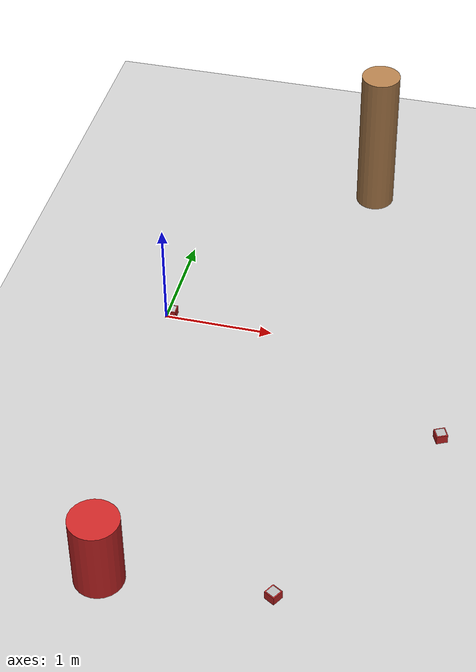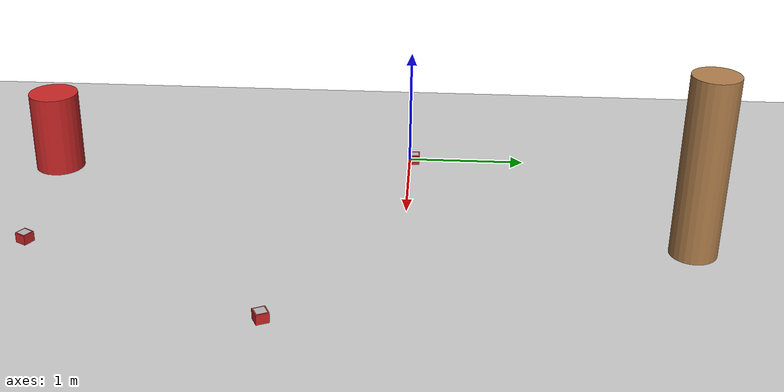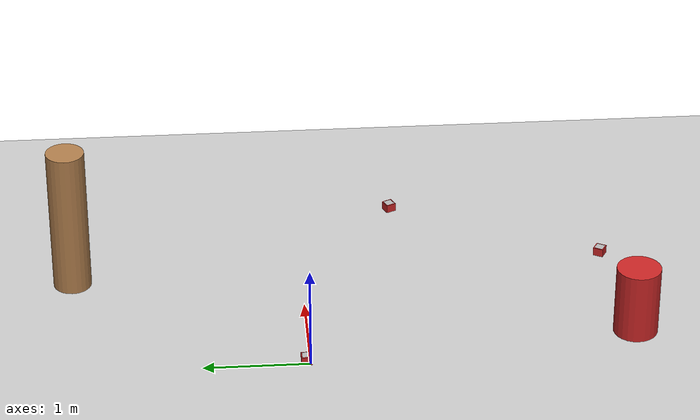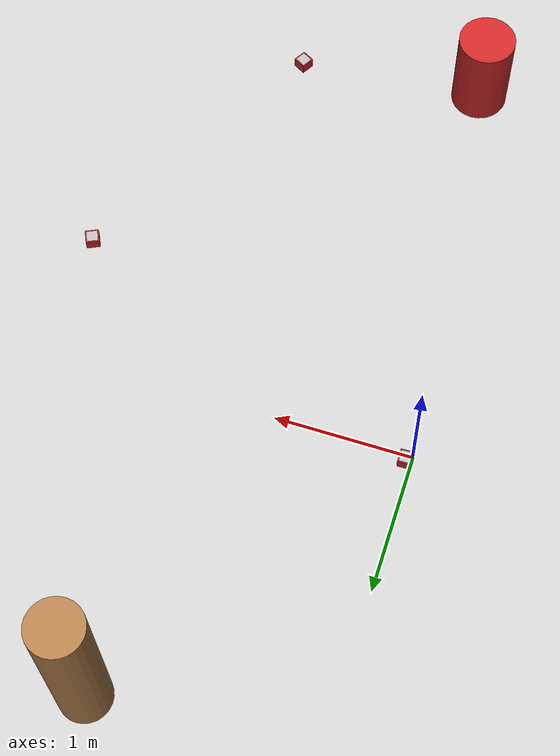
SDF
<sdf version="1.7">
 <world name="default">
  <model name="ground_plane">
   <static>1</static>
   <link name="link">
    <collision name="collision">
     <geometry><plane><normal>0 0 1</normal><size>100 100</size></plane></geometry>
     <surface><friction><ode><mu>100</mu><mu2>50</mu2></ode></friction></surface>
    </collision>
    <visual name="visual">
     <cast_shadows>0</cast_shadows>
     <geometry><plane><normal>0 0 1</normal><size>100 100</size></plane></geometry>
     <material>
      <script><uri>file://media/materials/scripts/gazebo.material</uri><name>Gazebo/Grey</name></script>
     </material>
    </visual>
   </link>
  </model>
  <model name="construction_cone_4">
   <pose>1.54493 2.21479 0.728544 0 -0 8e-06</pose>
   <link name="link">
    <inertial>
     <mass>1</mass>
     <inertia><ixx>0.145833</ixx><ixy>0</ixy><ixz>0</ixz><iyy>0.145833</iyy><iyz>0</iyz><izz>0.125</izz></inertia>
    </inertial>
    <collision name="collision">
     <geometry><cylinder><radius>0.183096</radius><length>1.4571</length></cylinder></geometry>
    </collision>
    <visual name="visual">
     <geometry><cylinder><radius>0.183096</radius><length>1.4571</length></cylinder></geometry>
     <material>
      <script><name>Gazebo/Wood</name><uri>file://media/materials/scripts/gazebo.material</uri></script>
     </material>
    </visual>
   </link>
  </model>
  <model name="poly_7">
   <pose>0.041481 0.035904 0.024995 0 0.000184 0.015537</pose>
   <link name="poly_7_link">
    <inertial>
     <mass>0.7</mass>
     <inertia>
      <ixx>0.00016667</ixx>
      <ixy>0</ixy>
      <ixz>0</ixz>
      <iyy>0.00016667</iyy>
      <iyz>0</iyz>
      <izz>0.00016667</izz>
     </inertia>
    </inertial>
    <collision name="collision"><geometry><box><size>0.1 0.1 0.1</size></box></geometry></collision>
    <visual name="visual">
     <geometry><box><size>0.1 0.1 0.1</size></box></geometry>
     <material>
      <script><name>Gazebo/Red</name><uri>file://media/materials/scripts/gazebo.material</uri></script>
     </material>
    </visual>
   </link>
   <link name="tag7">
    <pose>0 0 0.051 0 -0 0</pose>
    <collision name="collision"><geometry><box><size>0.0825 0.0825 0.0001</size></box></geometry></collision>
    <visual name="visual">
     <cast_shadows>0</cast_shadows>
     <geometry><box><size>0.0825 0.0825 0.0001</size></box></geometry>
     <material>
      <script>
       <uri>model://artag/materials/scripts</uri>
       <uri>model://artag/materials/textures</uri>
       <name>material/artag7</name>
      </script>
     </material>
    </visual>
    <inertial>
     <inertia><ixx>0.0001</ixx><ixy>0</ixy><ixz>0</ixz><iyy>0.0001</iyy><iyz>0</iyz><izz>0.0001</izz></inertia>
     <mass>0.1</mass>
    </inertial>
   </link>
   <joint name="poly_7_tag7" type="fixed"><parent>poly_7_link</parent><child>tag7</child></joint>
  </model>
  <model name="place_table_r">
   <static>1</static>
   <pose>0.343307 -3.08766 0.345 0 -0 0</pose>
   <link name="link">
    <inertial>
     <mass>1</mass>
     <inertia><ixx>0.145833</ixx><ixy>0</ixy><ixz>0</ixz><iyy>0.145833</iyy><iyz>0</iyz><izz>0.125</izz></inertia>
    </inertial>
    <collision name="collision">
     <geometry><cylinder><radius>0.21</radius><length>0.69</length></cylinder></geometry>
    </collision>
    <visual name="visual">
     <geometry><cylinder><radius>0.21</radius><length>0.69</length></cylinder></geometry>
     <material>
      <script><name>Gazebo/Red</name><uri>file://media/materials/scripts/gazebo.material</uri></script>
     </material>
    </visual>
   </link>
  </model>
  <model name="poly_8">
   <pose>1.72313 -2.95941 0.024997 5e-06 -0.000102 -2.09515</pose>
   <link name="poly_8_link">
    <inertial>
     <mass>0.7</mass>
     <inertia>
      <ixx>0.00016667</ixx>
      <ixy>0</ixy>
      <ixz>0</ixz>
      <iyy>0.00016667</iyy>
      <iyz>0</iyz>
      <izz>0.00016667</izz>
     </inertia>
    </inertial>
    <collision name="collision"><geometry><box><size>0.1 0.1 0.1</size></box></geometry></collision>
    <visual name="visual">
     <geometry><box><size>0.1 0.1 0.1</size></box></geometry>
     <material>
      <script><name>Gazebo/Red</name><uri>file://media/materials/scripts/gazebo.material</uri></script>
     </material>
    </visual>
   </link>
   <link name="tag8">
    <pose>0 0 0.051 0 -0 0</pose>
    <collision name="collision"><geometry><box><size>0.0825 0.0825 0.0001</size></box></geometry></collision>
    <visual name="visual">
     <cast_shadows>0</cast_shadows>
     <geometry><box><size>0.0825 0.0825 0.0001</size></box></geometry>
     <material>
      <script>
       <uri>model://artag/materials/scripts</uri>
       <uri>model://artag/materials/textures</uri>
       <name>material/artag8</name>
      </script>
     </material>
    </visual>
    <inertial>
     <inertia><ixx>0.0001</ixx><ixy>0</ixy><ixz>0</ixz><iyy>0.0001</iyy><iyz>0</iyz><izz>0.0001</izz></inertia>
     <mass>0.1</mass>
    </inertial>
   </link>
   <joint name="poly_8_tag8" type="fixed"><parent>poly_8_link</parent><child>tag8</child></joint>
  </model>
  <model name="poly_12">
   <pose>2.71697 -0.958161 0.025 6e-06 -0 -1.12694</pose>
   <link name="poly_12_link">
    <inertial>
     <mass>0.7</mass>
     <inertia>
      <ixx>0.00016667</ixx>
      <ixy>0</ixy>
      <ixz>0</ixz>
      <iyy>0.00016667</iyy>
      <iyz>0</iyz>
      <izz>0.00016667</izz>
     </inertia>
    </inertial>
    <collision name="collision"><geometry><box><size>0.1 0.1 0.1</size></box></geometry></collision>
    <visual name="visual">
     <geometry><box><size>0.1 0.1 0.1</size></box></geometry>
     <material>
      <script><name>Gazebo/Red</name><uri>file://media/materials/scripts/gazebo.material</uri></script>
     </material>
    </visual>
   </link>
   <link name="tag12">
    <pose>0 0 0.051 0 -0 0</pose>
    <collision name="collision"><geometry><box><size>0.0825 0.0825 0.0001</size></box></geometry></collision>
    <visual name="visual">
     <cast_shadows>0</cast_shadows>
     <geometry><box><size>0.0825 0.0825 0.0001</size></box></geometry>
     <material>
      <script>
       <uri>model://artag/materials/scripts</uri>
       <uri>model://artag/materials/textures</uri>
       <name>material/artag12</name>
      </script>
     </material>
    </visual>
    <inertial>
     <inertia><ixx>0.0001</ixx><ixy>0</ixy><ixz>0</ixz><iyy>0.0001</iyy><iyz>0</iyz><izz>0.0001</izz></inertia>
     <mass>0.1</mass>
    </inertial>
   </link>
   <joint name="poly_12_tag12" type="fixed"><parent>poly_12_link</parent><child>tag12</child></joint>
  </model>
 </world>
</sdf>
